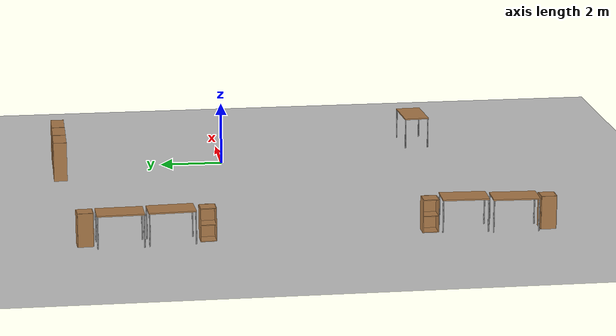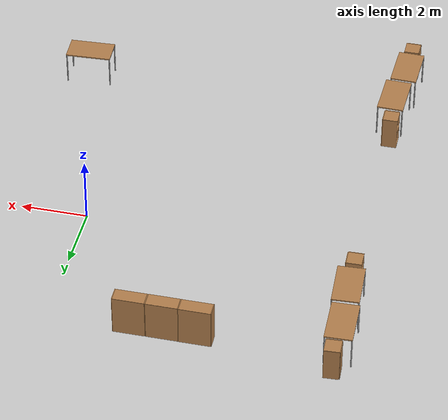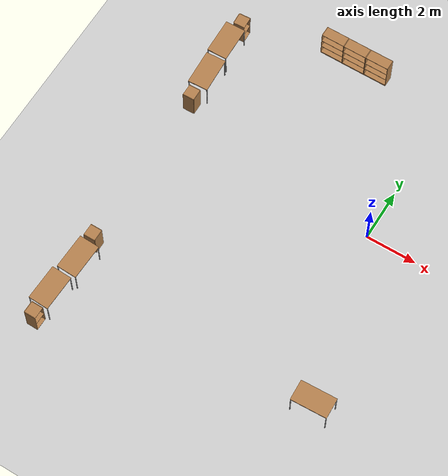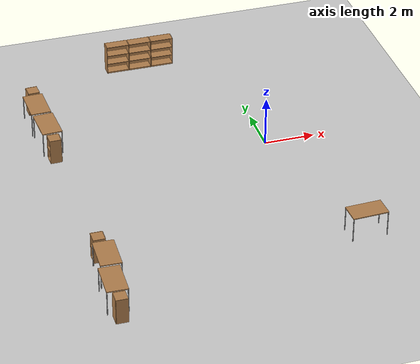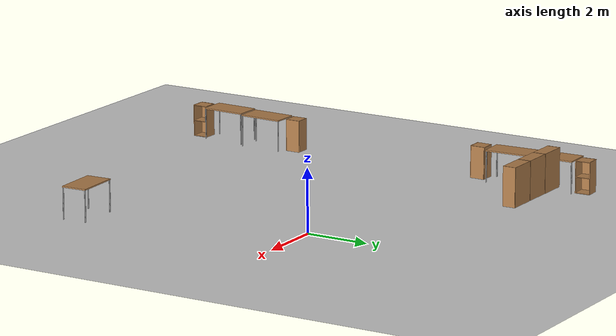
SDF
<sdf version="1.6">
 <world name="default">
  <model name="ground_plane">
   <static>1</static>
   <link name="link">
    <collision name="collision">
     <geometry><plane><normal>0 0 1</normal><size>100 100</size></plane></geometry>
     <surface><friction><ode><mu>100</mu><mu2>50</mu2></ode></friction></surface>
    </collision>
    <visual name="visual">
     <cast_shadows>0</cast_shadows>
     <geometry><plane><normal>0 0 1</normal><size>100 100</size></plane></geometry>
     <material>
      <script><uri>file://media/materials/scripts/gazebo.material</uri><name>Gazebo/Grey</name></script>
     </material>
    </visual>
   </link>
  </model>
  <model name="bookshelf_0">
   <static>1</static>
   <link name="bookshelf_0::bookshelf_0::link">
    <inertial><mass>1</mass></inertial>
    <collision name="back">
     <pose>0 0.005 0.6 0 -0 0</pose>
     <geometry><box><size>0.9 0.01 1.2</size></box></geometry>
    </collision>
    <visual name="visual1">
     <pose>0 0.005 0.6 0 -0 0</pose>
     <geometry><box><size>0.9 0.01 1.2</size></box></geometry>
     <material>
      <script><uri>file://media/materials/scripts/gazebo.material</uri><name>Gazebo/Wood</name></script>
     </material>
    </visual>
    <collision name="left_side">
     <pose>0.45 -0.195 0.6 0 -0 0</pose>
     <geometry><box><size>0.02 0.4 1.2</size></box></geometry>
    </collision>
    <visual name="visual2">
     <pose>0.45 -0.195 0.6 0 -0 0</pose>
     <geometry><box><size>0.02 0.4 1.2</size></box></geometry>
     <material>
      <script><uri>file://media/materials/scripts/gazebo.material</uri><name>Gazebo/Wood</name></script>
     </material>
    </visual>
    <collision name="right_side">
     <pose>-0.45 -0.195 0.6 0 -0 0</pose>
     <geometry><box><size>0.02 0.4 1.2</size></box></geometry>
    </collision>
    <visual name="visual3">
     <pose>-0.45 -0.195 0.6 0 -0 0</pose>
     <geometry><box><size>0.02 0.4 1.2</size></box></geometry>
     <material>
      <script><uri>file://media/materials/scripts/gazebo.material</uri><name>Gazebo/Wood</name></script>
     </material>
    </visual>
    <collision name="bottom">
     <pose>0 -0.195 0.03 0 -0 0</pose>
     <geometry><box><size>0.88 0.4 0.06</size></box></geometry>
    </collision>
    <visual name="visual4">
     <pose>0 -0.195 0.03 0 -0 0</pose>
     <geometry><box><size>0.88 0.4 0.06</size></box></geometry>
     <material>
      <script><uri>file://media/materials/scripts/gazebo.material</uri><name>Gazebo/Wood</name></script>
     </material>
    </visual>
    <collision name="top">
     <pose>0 -0.195 1.19 0 -0 0</pose>
     <geometry><box><size>0.88 0.4 0.02</size></box></geometry>
    </collision>
    <visual name="visual5">
     <pose>0 -0.195 1.19 0 -0 0</pose>
     <geometry><box><size>0.88 0.4 0.02</size></box></geometry>
     <material>
      <script><uri>file://media/materials/scripts/gazebo.material</uri><name>Gazebo/Wood</name></script>
     </material>
    </visual>
    <collision name="low_shelf">
     <pose>0 -0.195 0.43 0 -0 0</pose>
     <geometry><box><size>0.88 0.4 0.02</size></box></geometry>
    </collision>
    <visual name="visual6">
     <pose>0 -0.195 0.43 0 -0 0</pose>
     <geometry><box><size>0.88 0.4 0.02</size></box></geometry>
     <material>
      <script><uri>file://media/materials/scripts/gazebo.material</uri><name>Gazebo/Wood</name></script>
     </material>
    </visual>
    <collision name="high_shelf">
     <pose>0 -0.195 0.8 0 -0 0</pose>
     <geometry><box><size>0.88 0.4 0.02</size></box></geometry>
    </collision>
    <visual name="visual7">
     <pose>0 -0.195 0.8 0 -0 0</pose>
     <geometry><box><size>0.88 0.4 0.02</size></box></geometry>
     <material>
      <script><uri>file://media/materials/scripts/gazebo.material</uri><name>Gazebo/Wood</name></script>
     </material>
    </visual>
   </link>
   <pose>-4.58848 5.58592 1.04077 0 -0 0</pose>
  </model>
  <model name="bookshelf_0_clone">
   <static>1</static>
   <link name="bookshelf_0::bookshelf_0::link">
    <inertial><mass>1</mass></inertial>
    <collision name="back">
     <pose>0 0.005 0.6 0 -0 0</pose>
     <geometry><box><size>0.9 0.01 1.2</size></box></geometry>
    </collision>
    <visual name="visual1">
     <pose>0 0.005 0.6 0 -0 0</pose>
     <geometry><box><size>0.9 0.01 1.2</size></box></geometry>
     <material>
      <script><uri>file://media/materials/scripts/gazebo.material</uri><name>Gazebo/Wood</name></script>
     </material>
    </visual>
    <collision name="left_side">
     <pose>0.45 -0.195 0.6 0 -0 0</pose>
     <geometry><box><size>0.02 0.4 1.2</size></box></geometry>
    </collision>
    <visual name="visual2">
     <pose>0.45 -0.195 0.6 0 -0 0</pose>
     <geometry><box><size>0.02 0.4 1.2</size></box></geometry>
     <material>
      <script><uri>file://media/materials/scripts/gazebo.material</uri><name>Gazebo/Wood</name></script>
     </material>
    </visual>
    <collision name="right_side">
     <pose>-0.45 -0.195 0.6 0 -0 0</pose>
     <geometry><box><size>0.02 0.4 1.2</size></box></geometry>
    </collision>
    <visual name="visual3">
     <pose>-0.45 -0.195 0.6 0 -0 0</pose>
     <geometry><box><size>0.02 0.4 1.2</size></box></geometry>
     <material>
      <script><uri>file://media/materials/scripts/gazebo.material</uri><name>Gazebo/Wood</name></script>
     </material>
    </visual>
    <collision name="bottom">
     <pose>0 -0.195 0.03 0 -0 0</pose>
     <geometry><box><size>0.88 0.4 0.06</size></box></geometry>
    </collision>
    <visual name="visual4">
     <pose>0 -0.195 0.03 0 -0 0</pose>
     <geometry><box><size>0.88 0.4 0.06</size></box></geometry>
     <material>
      <script><uri>file://media/materials/scripts/gazebo.material</uri><name>Gazebo/Wood</name></script>
     </material>
    </visual>
    <collision name="top">
     <pose>0 -0.195 1.19 0 -0 0</pose>
     <geometry><box><size>0.88 0.4 0.02</size></box></geometry>
    </collision>
    <visual name="visual5">
     <pose>0 -0.195 1.19 0 -0 0</pose>
     <geometry><box><size>0.88 0.4 0.02</size></box></geometry>
     <material>
      <script><uri>file://media/materials/scripts/gazebo.material</uri><name>Gazebo/Wood</name></script>
     </material>
    </visual>
    <collision name="low_shelf">
     <pose>0 -0.195 0.43 0 -0 0</pose>
     <geometry><box><size>0.88 0.4 0.02</size></box></geometry>
    </collision>
    <visual name="visual6">
     <pose>0 -0.195 0.43 0 -0 0</pose>
     <geometry><box><size>0.88 0.4 0.02</size></box></geometry>
     <material>
      <script><uri>file://media/materials/scripts/gazebo.material</uri><name>Gazebo/Wood</name></script>
     </material>
    </visual>
    <collision name="high_shelf">
     <pose>0 -0.195 0.8 0 -0 0</pose>
     <geometry><box><size>0.88 0.4 0.02</size></box></geometry>
    </collision>
    <visual name="visual7">
     <pose>0 -0.195 0.8 0 -0 0</pose>
     <geometry><box><size>0.88 0.4 0.02</size></box></geometry>
     <material>
      <script><uri>file://media/materials/scripts/gazebo.material</uri><name>Gazebo/Wood</name></script>
     </material>
    </visual>
   </link>
   <pose>-3.67407 5.58213 1.04077 0 -0 0</pose>
  </model>
  <model name="bookshelf_0_clone_clone">
   <static>1</static>
   <link name="bookshelf_0::bookshelf_0::link">
    <inertial><mass>1</mass></inertial>
    <collision name="back">
     <pose>0 0.005 0.6 0 -0 0</pose>
     <geometry><box><size>0.9 0.01 1.2</size></box></geometry>
    </collision>
    <visual name="visual1">
     <pose>0 0.005 0.6 0 -0 0</pose>
     <geometry><box><size>0.9 0.01 1.2</size></box></geometry>
     <material>
      <script><uri>file://media/materials/scripts/gazebo.material</uri><name>Gazebo/Wood</name></script>
     </material>
    </visual>
    <collision name="left_side">
     <pose>0.45 -0.195 0.6 0 -0 0</pose>
     <geometry><box><size>0.02 0.4 1.2</size></box></geometry>
    </collision>
    <visual name="visual2">
     <pose>0.45 -0.195 0.6 0 -0 0</pose>
     <geometry><box><size>0.02 0.4 1.2</size></box></geometry>
     <material>
      <script><uri>file://media/materials/scripts/gazebo.material</uri><name>Gazebo/Wood</name></script>
     </material>
    </visual>
    <collision name="right_side">
     <pose>-0.45 -0.195 0.6 0 -0 0</pose>
     <geometry><box><size>0.02 0.4 1.2</size></box></geometry>
    </collision>
    <visual name="visual3">
     <pose>-0.45 -0.195 0.6 0 -0 0</pose>
     <geometry><box><size>0.02 0.4 1.2</size></box></geometry>
     <material>
      <script><uri>file://media/materials/scripts/gazebo.material</uri><name>Gazebo/Wood</name></script>
     </material>
    </visual>
    <collision name="bottom">
     <pose>0 -0.195 0.03 0 -0 0</pose>
     <geometry><box><size>0.88 0.4 0.06</size></box></geometry>
    </collision>
    <visual name="visual4">
     <pose>0 -0.195 0.03 0 -0 0</pose>
     <geometry><box><size>0.88 0.4 0.06</size></box></geometry>
     <material>
      <script><uri>file://media/materials/scripts/gazebo.material</uri><name>Gazebo/Wood</name></script>
     </material>
    </visual>
    <collision name="top">
     <pose>0 -0.195 1.19 0 -0 0</pose>
     <geometry><box><size>0.88 0.4 0.02</size></box></geometry>
    </collision>
    <visual name="visual5">
     <pose>0 -0.195 1.19 0 -0 0</pose>
     <geometry><box><size>0.88 0.4 0.02</size></box></geometry>
     <material>
      <script><uri>file://media/materials/scripts/gazebo.material</uri><name>Gazebo/Wood</name></script>
     </material>
    </visual>
    <collision name="low_shelf">
     <pose>0 -0.195 0.43 0 -0 0</pose>
     <geometry><box><size>0.88 0.4 0.02</size></box></geometry>
    </collision>
    <visual name="visual6">
     <pose>0 -0.195 0.43 0 -0 0</pose>
     <geometry><box><size>0.88 0.4 0.02</size></box></geometry>
     <material>
      <script><uri>file://media/materials/scripts/gazebo.material</uri><name>Gazebo/Wood</name></script>
     </material>
    </visual>
    <collision name="high_shelf">
     <pose>0 -0.195 0.8 0 -0 0</pose>
     <geometry><box><size>0.88 0.4 0.02</size></box></geometry>
    </collision>
    <visual name="visual7">
     <pose>0 -0.195 0.8 0 -0 0</pose>
     <geometry><box><size>0.88 0.4 0.02</size></box></geometry>
     <material>
      <script><uri>file://media/materials/scripts/gazebo.material</uri><name>Gazebo/Wood</name></script>
     </material>
    </visual>
   </link>
   <pose>-2.75403 5.58407 1.04077 0 -0 0</pose>
  </model>
  <model name="cabinet_clone_clone_0_clone">
   <static>1</static>
   <link name="cabinet_bottom_plate">
    <inertial>
     <pose>0 0 -1 0 -0 0</pose>
     <inertia><ixx>2.05</ixx><ixy>0</ixy><ixz>0</ixz><iyy>2.05</iyy><iyz>0</iyz><izz>2.05</izz></inertia>
     <mass>25</mass>
    </inertial>
    <collision name="cabinet_bottom_plate_geom">
     <pose>0 0 0.01 0 -0 0</pose>
     <geometry><box><size>0.45 0.45 0.02</size></box></geometry>
    </collision>
    <visual name="cabinet_bottom_plate_geom_visual">
     <pose>0 0 0.01 0 -0 0</pose>
     <geometry><box><size>0.45 0.45 0.02</size></box></geometry>
     <material>
      <script><uri>file://media/materials/scripts/gazebo.material</uri><name>Gazebo/Wood</name></script>
     </material>
    </visual>
    <collision name="cabinet_bottom_plate_geom_cabinet_back_plate">
     <pose>0.235 0 0.51 0 -0 0</pose>
     <geometry><box><size>0.02 0.45 1.02</size></box></geometry>
    </collision>
    <visual name="cabinet_bottom_plate_geom_cabinet_back_plate_visual">
     <pose>0.235 0 0.51 0 -0 0</pose>
     <geometry><box><size>0.02 0.45 1.02</size></box></geometry>
     <material>
      <script><uri>file://media/materials/scripts/gazebo.material</uri><name>Gazebo/Wood</name></script>
     </material>
    </visual>
    <collision name="cabinet_bottom_plate_geom_cabinet_left_plate">
     <pose>0 0.235 0.51 0 -0 0</pose>
     <geometry><box><size>0.45 0.02 1.02</size></box></geometry>
    </collision>
    <visual name="cabinet_bottom_plate_geom_cabinet_left_plate_visual">
     <pose>0 0.235 0.51 0 -0 0</pose>
     <geometry><box><size>0.45 0.02 1.02</size></box></geometry>
     <material>
      <script><uri>file://media/materials/scripts/gazebo.material</uri><name>Gazebo/Wood</name></script>
     </material>
    </visual>
    <collision name="cabinet_bottom_plate_geom_cabinet_middle_plate">
     <pose>0 0 0.51 0 -0 0</pose>
     <geometry><box><size>0.45 0.45 0.02</size></box></geometry>
    </collision>
    <visual name="cabinet_bottom_plate_geom_cabinet_middle_plate_visual">
     <pose>0 0 0.51 0 -0 0</pose>
     <geometry><box><size>0.45 0.45 0.02</size></box></geometry>
     <material>
      <script><uri>file://media/materials/scripts/gazebo.material</uri><name>Gazebo/Wood</name></script>
     </material>
    </visual>
    <collision name="cabinet_bottom_plate_geom_cabinet_right_plate">
     <pose>0 -0.235 0.51 0 -0 0</pose>
     <geometry><box><size>0.45 0.02 1.02</size></box></geometry>
    </collision>
    <visual name="cabinet_bottom_plate_geom_cabinet_right_plate_visual">
     <pose>0 -0.235 0.51 0 -0 0</pose>
     <geometry><box><size>0.45 0.02 1.02</size></box></geometry>
     <material>
      <script><uri>file://media/materials/scripts/gazebo.material</uri><name>Gazebo/Wood</name></script>
     </material>
    </visual>
    <collision name="cabinet_bottom_plate_geom_cabinet_top_plate">
     <pose>0 0 1.01 0 -0 0</pose>
     <geometry><box><size>0.45 0.45 0.02</size></box></geometry>
    </collision>
    <visual name="cabinet_bottom_plate_geom_cabinet_top_plate_visual">
     <pose>0 0 1.01 0 -0 0</pose>
     <geometry><box><size>0.45 0.45 0.02</size></box></geometry>
     <material>
      <script><uri>file://media/materials/scripts/gazebo.material</uri><name>Gazebo/Wood</name></script>
     </material>
    </visual>
   </link>
   <pose>-8.2361 4.81951 0.017437 0 0 -3.09441</pose>
  </model>
  <model name="table_clone_clone_0_clone">
   <static>0</static>
   <link name="link">
    <collision name="surface">
     <pose>0 0 1 0 -0 0</pose>
     <geometry><box><size>1.5 0.8 0.03</size></box></geometry>
     <surface><friction><ode><mu>0.6</mu><mu2>0.6</mu2></ode></friction></surface>
    </collision>
    <visual name="visual1">
     <pose>0 0 1 0 -0 0</pose>
     <geometry><box><size>1.4 0.8 0.04</size></box></geometry>
     <material>
      <script><uri>file://media/materials/scripts/gazebo.material</uri><name>Gazebo/Wood</name></script>
     </material>
    </visual>
    <collision name="front_left_leg">
     <pose>0.68 0.38 0.5 0 -0 0</pose>
     <geometry><cylinder><radius>0.02</radius><length>1</length></cylinder></geometry>
    </collision>
    <visual name="front_left_leg">
     <pose>0.68 0.38 0.5 0 -0 0</pose>
     <geometry><cylinder><radius>0.02</radius><length>1</length></cylinder></geometry>
     <material>
      <script><uri>file://media/materials/scripts/gazebo.material</uri><name>Gazebo/Grey</name></script>
     </material>
    </visual>
    <collision name="front_right_leg">
     <pose>0.68 -0.38 0.5 0 -0 0</pose>
     <geometry><cylinder><radius>0.02</radius><length>1</length></cylinder></geometry>
    </collision>
    <visual name="front_right_leg">
     <pose>0.68 -0.38 0.5 0 -0 0</pose>
     <geometry><cylinder><radius>0.02</radius><length>1</length></cylinder></geometry>
     <material>
      <script><uri>file://media/materials/scripts/gazebo.material</uri><name>Gazebo/Grey</name></script>
     </material>
    </visual>
    <collision name="back_right_leg">
     <pose>-0.68 -0.38 0.5 0 -0 0</pose>
     <geometry><cylinder><radius>0.02</radius><length>1</length></cylinder></geometry>
    </collision>
    <visual name="back_right_leg">
     <pose>-0.68 -0.38 0.5 0 -0 0</pose>
     <geometry><cylinder><radius>0.02</radius><length>1</length></cylinder></geometry>
     <material>
      <script><uri>file://media/materials/scripts/gazebo.material</uri><name>Gazebo/Grey</name></script>
     </material>
    </visual>
    <collision name="back_left_leg">
     <pose>-0.68 0.38 0.5 0 -0 0</pose>
     <geometry><cylinder><radius>0.02</radius><length>1</length></cylinder></geometry>
    </collision>
    <visual name="back_left_leg">
     <pose>-0.68 0.38 0.5 0 -0 0</pose>
     <geometry><cylinder><radius>0.02</radius><length>1</length></cylinder></geometry>
     <material>
      <script><uri>file://media/materials/scripts/gazebo.material</uri><name>Gazebo/Grey</name></script>
     </material>
    </visual>
    <inertial>
     <inertia><ixx>1</ixx><ixy>0</ixy><ixz>0</ixz><iyy>1</iyy><iyz>0</iyz><izz>1</izz></inertia>
     <mass>1</mass>
    </inertial>
   </link>
   <pose>-8.29871 3.79829 -3e-06 -3e-06 2e-06 1.59882</pose>
  </model>
  <model name="table_clone_clone_clone_clone">
   <static>0</static>
   <link name="link">
    <collision name="surface">
     <pose>0 0 1 0 -0 0</pose>
     <geometry><box><size>1.5 0.8 0.03</size></box></geometry>
     <surface><friction><ode><mu>0.6</mu><mu2>0.6</mu2></ode></friction></surface>
    </collision>
    <visual name="visual1">
     <pose>0 0 1 0 -0 0</pose>
     <geometry><box><size>1.4 0.8 0.04</size></box></geometry>
     <material>
      <script><uri>file://media/materials/scripts/gazebo.material</uri><name>Gazebo/Wood</name></script>
     </material>
    </visual>
    <collision name="front_left_leg">
     <pose>0.68 0.38 0.5 0 -0 0</pose>
     <geometry><cylinder><radius>0.02</radius><length>1</length></cylinder></geometry>
    </collision>
    <visual name="front_left_leg">
     <pose>0.68 0.38 0.5 0 -0 0</pose>
     <geometry><cylinder><radius>0.02</radius><length>1</length></cylinder></geometry>
     <material>
      <script><uri>file://media/materials/scripts/gazebo.material</uri><name>Gazebo/Grey</name></script>
     </material>
    </visual>
    <collision name="front_right_leg">
     <pose>0.68 -0.38 0.5 0 -0 0</pose>
     <geometry><cylinder><radius>0.02</radius><length>1</length></cylinder></geometry>
    </collision>
    <visual name="front_right_leg">
     <pose>0.68 -0.38 0.5 0 -0 0</pose>
     <geometry><cylinder><radius>0.02</radius><length>1</length></cylinder></geometry>
     <material>
      <script><uri>file://media/materials/scripts/gazebo.material</uri><name>Gazebo/Grey</name></script>
     </material>
    </visual>
    <collision name="back_right_leg">
     <pose>-0.68 -0.38 0.5 0 -0 0</pose>
     <geometry><cylinder><radius>0.02</radius><length>1</length></cylinder></geometry>
    </collision>
    <visual name="back_right_leg">
     <pose>-0.68 -0.38 0.5 0 -0 0</pose>
     <geometry><cylinder><radius>0.02</radius><length>1</length></cylinder></geometry>
     <material>
      <script><uri>file://media/materials/scripts/gazebo.material</uri><name>Gazebo/Grey</name></script>
     </material>
    </visual>
    <collision name="back_left_leg">
     <pose>-0.68 0.38 0.5 0 -0 0</pose>
     <geometry><cylinder><radius>0.02</radius><length>1</length></cylinder></geometry>
    </collision>
    <visual name="back_left_leg">
     <pose>-0.68 0.38 0.5 0 -0 0</pose>
     <geometry><cylinder><radius>0.02</radius><length>1</length></cylinder></geometry>
     <material>
      <script><uri>file://media/materials/scripts/gazebo.material</uri><name>Gazebo/Grey</name></script>
     </material>
    </visual>
    <inertial>
     <inertia><ixx>1</ixx><ixy>0</ixy><ixz>0</ixz><iyy>1</iyy><iyz>0</iyz><izz>1</izz></inertia>
     <mass>1</mass>
    </inertial>
   </link>
   <pose>-8.20317 2.29226 -1e-06 -1e-06 -0 1.62146</pose>
  </model>
  <model name="cabinet_clone_clone_clone_clone">
   <static>1</static>
   <link name="cabinet_bottom_plate">
    <inertial>
     <pose>0 0 -1 0 -0 0</pose>
     <inertia><ixx>2.05</ixx><ixy>0</ixy><ixz>0</ixz><iyy>2.05</iyy><iyz>0</iyz><izz>2.05</izz></inertia>
     <mass>25</mass>
    </inertial>
    <collision name="cabinet_bottom_plate_geom">
     <pose>0 0 0.01 0 -0 0</pose>
     <geometry><box><size>0.45 0.45 0.02</size></box></geometry>
    </collision>
    <visual name="cabinet_bottom_plate_geom_visual">
     <pose>0 0 0.01 0 -0 0</pose>
     <geometry><box><size>0.45 0.45 0.02</size></box></geometry>
     <material>
      <script><uri>file://media/materials/scripts/gazebo.material</uri><name>Gazebo/Wood</name></script>
     </material>
    </visual>
    <collision name="cabinet_bottom_plate_geom_cabinet_back_plate">
     <pose>0.235 0 0.51 0 -0 0</pose>
     <geometry><box><size>0.02 0.45 1.02</size></box></geometry>
    </collision>
    <visual name="cabinet_bottom_plate_geom_cabinet_back_plate_visual">
     <pose>0.235 0 0.51 0 -0 0</pose>
     <geometry><box><size>0.02 0.45 1.02</size></box></geometry>
     <material>
      <script><uri>file://media/materials/scripts/gazebo.material</uri><name>Gazebo/Wood</name></script>
     </material>
    </visual>
    <collision name="cabinet_bottom_plate_geom_cabinet_left_plate">
     <pose>0 0.235 0.51 0 -0 0</pose>
     <geometry><box><size>0.45 0.02 1.02</size></box></geometry>
    </collision>
    <visual name="cabinet_bottom_plate_geom_cabinet_left_plate_visual">
     <pose>0 0.235 0.51 0 -0 0</pose>
     <geometry><box><size>0.45 0.02 1.02</size></box></geometry>
     <material>
      <script><uri>file://media/materials/scripts/gazebo.material</uri><name>Gazebo/Wood</name></script>
     </material>
    </visual>
    <collision name="cabinet_bottom_plate_geom_cabinet_middle_plate">
     <pose>0 0 0.51 0 -0 0</pose>
     <geometry><box><size>0.45 0.45 0.02</size></box></geometry>
    </collision>
    <visual name="cabinet_bottom_plate_geom_cabinet_middle_plate_visual">
     <pose>0 0 0.51 0 -0 0</pose>
     <geometry><box><size>0.45 0.45 0.02</size></box></geometry>
     <material>
      <script><uri>file://media/materials/scripts/gazebo.material</uri><name>Gazebo/Wood</name></script>
     </material>
    </visual>
    <collision name="cabinet_bottom_plate_geom_cabinet_right_plate">
     <pose>0 -0.235 0.51 0 -0 0</pose>
     <geometry><box><size>0.45 0.02 1.02</size></box></geometry>
    </collision>
    <visual name="cabinet_bottom_plate_geom_cabinet_right_plate_visual">
     <pose>0 -0.235 0.51 0 -0 0</pose>
     <geometry><box><size>0.45 0.02 1.02</size></box></geometry>
     <material>
      <script><uri>file://media/materials/scripts/gazebo.material</uri><name>Gazebo/Wood</name></script>
     </material>
    </visual>
    <collision name="cabinet_bottom_plate_geom_cabinet_top_plate">
     <pose>0 0 1.01 0 -0 0</pose>
     <geometry><box><size>0.45 0.45 0.02</size></box></geometry>
    </collision>
    <visual name="cabinet_bottom_plate_geom_cabinet_top_plate_visual">
     <pose>0 0 1.01 0 -0 0</pose>
     <geometry><box><size>0.45 0.45 0.02</size></box></geometry>
     <material>
      <script><uri>file://media/materials/scripts/gazebo.material</uri><name>Gazebo/Wood</name></script>
     </material>
    </visual>
   </link>
   <pose>-8.19764 1.21371 0.017437 -0.01053 -0.000628 0.017723</pose>
  </model>
  <model name="table_clone_0_clone_clone_0">
   <static>0</static>
   <link name="link">
    <collision name="surface">
     <pose>0 0 1 0 -0 0</pose>
     <geometry><box><size>1.5 0.8 0.03</size></box></geometry>
     <surface><friction><ode><mu>0.6</mu><mu2>0.6</mu2></ode></friction></surface>
    </collision>
    <visual name="visual1">
     <pose>0 0 1 0 -0 0</pose>
     <geometry><box><size>1.4 0.8 0.04</size></box></geometry>
     <material>
      <script><uri>file://media/materials/scripts/gazebo.material</uri><name>Gazebo/Wood</name></script>
     </material>
    </visual>
    <collision name="front_left_leg">
     <pose>0.68 0.38 0.5 0 -0 0</pose>
     <geometry><cylinder><radius>0.02</radius><length>1</length></cylinder></geometry>
    </collision>
    <visual name="front_left_leg">
     <pose>0.68 0.38 0.5 0 -0 0</pose>
     <geometry><cylinder><radius>0.02</radius><length>1</length></cylinder></geometry>
     <material>
      <script><uri>file://media/materials/scripts/gazebo.material</uri><name>Gazebo/Grey</name></script>
     </material>
    </visual>
    <collision name="front_right_leg">
     <pose>0.68 -0.38 0.5 0 -0 0</pose>
     <geometry><cylinder><radius>0.02</radius><length>1</length></cylinder></geometry>
    </collision>
    <visual name="front_right_leg">
     <pose>0.68 -0.38 0.5 0 -0 0</pose>
     <geometry><cylinder><radius>0.02</radius><length>1</length></cylinder></geometry>
     <material>
      <script><uri>file://media/materials/scripts/gazebo.material</uri><name>Gazebo/Grey</name></script>
     </material>
    </visual>
    <collision name="back_right_leg">
     <pose>-0.68 -0.38 0.5 0 -0 0</pose>
     <geometry><cylinder><radius>0.02</radius><length>1</length></cylinder></geometry>
    </collision>
    <visual name="back_right_leg">
     <pose>-0.68 -0.38 0.5 0 -0 0</pose>
     <geometry><cylinder><radius>0.02</radius><length>1</length></cylinder></geometry>
     <material>
      <script><uri>file://media/materials/scripts/gazebo.material</uri><name>Gazebo/Grey</name></script>
     </material>
    </visual>
    <collision name="back_left_leg">
     <pose>-0.68 0.38 0.5 0 -0 0</pose>
     <geometry><cylinder><radius>0.02</radius><length>1</length></cylinder></geometry>
    </collision>
    <visual name="back_left_leg">
     <pose>-0.68 0.38 0.5 0 -0 0</pose>
     <geometry><cylinder><radius>0.02</radius><length>1</length></cylinder></geometry>
     <material>
      <script><uri>file://media/materials/scripts/gazebo.material</uri><name>Gazebo/Grey</name></script>
     </material>
    </visual>
    <inertial>
     <inertia><ixx>1</ixx><ixy>0</ixy><ixz>0</ixz><iyy>1</iyy><iyz>0</iyz><izz>1</izz></inertia>
     <mass>1</mass>
    </inertial>
   </link>
   <pose>-8.05156 -6.45782 -1e-06 0 -2e-06 -1.60539</pose>
  </model>
  <model name="table_clone_0_clone_clone_1">
   <static>0</static>
   <link name="link">
    <collision name="surface">
     <pose>0 0 1 0 -0 0</pose>
     <geometry><box><size>1.5 0.8 0.03</size></box></geometry>
     <surface><friction><ode><mu>0.6</mu><mu2>0.6</mu2></ode></friction></surface>
    </collision>
    <visual name="visual1">
     <pose>0 0 1 0 -0 0</pose>
     <geometry><box><size>1.4 0.8 0.04</size></box></geometry>
     <material>
      <script><uri>file://media/materials/scripts/gazebo.material</uri><name>Gazebo/Wood</name></script>
     </material>
    </visual>
    <collision name="front_left_leg">
     <pose>0.68 0.38 0.5 0 -0 0</pose>
     <geometry><cylinder><radius>0.02</radius><length>1</length></cylinder></geometry>
    </collision>
    <visual name="front_left_leg">
     <pose>0.68 0.38 0.5 0 -0 0</pose>
     <geometry><cylinder><radius>0.02</radius><length>1</length></cylinder></geometry>
     <material>
      <script><uri>file://media/materials/scripts/gazebo.material</uri><name>Gazebo/Grey</name></script>
     </material>
    </visual>
    <collision name="front_right_leg">
     <pose>0.68 -0.38 0.5 0 -0 0</pose>
     <geometry><cylinder><radius>0.02</radius><length>1</length></cylinder></geometry>
    </collision>
    <visual name="front_right_leg">
     <pose>0.68 -0.38 0.5 0 -0 0</pose>
     <geometry><cylinder><radius>0.02</radius><length>1</length></cylinder></geometry>
     <material>
      <script><uri>file://media/materials/scripts/gazebo.material</uri><name>Gazebo/Grey</name></script>
     </material>
    </visual>
    <collision name="back_right_leg">
     <pose>-0.68 -0.38 0.5 0 -0 0</pose>
     <geometry><cylinder><radius>0.02</radius><length>1</length></cylinder></geometry>
    </collision>
    <visual name="back_right_leg">
     <pose>-0.68 -0.38 0.5 0 -0 0</pose>
     <geometry><cylinder><radius>0.02</radius><length>1</length></cylinder></geometry>
     <material>
      <script><uri>file://media/materials/scripts/gazebo.material</uri><name>Gazebo/Grey</name></script>
     </material>
    </visual>
    <collision name="back_left_leg">
     <pose>-0.68 0.38 0.5 0 -0 0</pose>
     <geometry><cylinder><radius>0.02</radius><length>1</length></cylinder></geometry>
    </collision>
    <visual name="back_left_leg">
     <pose>-0.68 0.38 0.5 0 -0 0</pose>
     <geometry><cylinder><radius>0.02</radius><length>1</length></cylinder></geometry>
     <material>
      <script><uri>file://media/materials/scripts/gazebo.material</uri><name>Gazebo/Grey</name></script>
     </material>
    </visual>
    <inertial>
     <inertia><ixx>1</ixx><ixy>0</ixy><ixz>0</ixz><iyy>1</iyy><iyz>0</iyz><izz>1</izz></inertia>
     <mass>1</mass>
    </inertial>
   </link>
   <pose>-8.21552 -7.95305 -9e-06 1e-06 -0 -1.60537</pose>
  </model>
  <model name="cabinet_clone_1_clone">
   <static>1</static>
   <link name="cabinet_bottom_plate">
    <inertial>
     <pose>0 0 -1 0 -0 0</pose>
     <inertia><ixx>2.05</ixx><ixy>0</ixy><ixz>0</ixz><iyy>2.05</iyy><iyz>0</iyz><izz>2.05</izz></inertia>
     <mass>25</mass>
    </inertial>
    <collision name="cabinet_bottom_plate_geom">
     <pose>0 0 0.01 0 -0 0</pose>
     <geometry><box><size>0.45 0.45 0.02</size></box></geometry>
    </collision>
    <visual name="cabinet_bottom_plate_geom_visual">
     <pose>0 0 0.01 0 -0 0</pose>
     <geometry><box><size>0.45 0.45 0.02</size></box></geometry>
     <material>
      <script><uri>file://media/materials/scripts/gazebo.material</uri><name>Gazebo/Wood</name></script>
     </material>
    </visual>
    <collision name="cabinet_bottom_plate_geom_cabinet_back_plate">
     <pose>0.235 0 0.51 0 -0 0</pose>
     <geometry><box><size>0.02 0.45 1.02</size></box></geometry>
    </collision>
    <visual name="cabinet_bottom_plate_geom_cabinet_back_plate_visual">
     <pose>0.235 0 0.51 0 -0 0</pose>
     <geometry><box><size>0.02 0.45 1.02</size></box></geometry>
     <material>
      <script><uri>file://media/materials/scripts/gazebo.material</uri><name>Gazebo/Wood</name></script>
     </material>
    </visual>
    <collision name="cabinet_bottom_plate_geom_cabinet_left_plate">
     <pose>0 0.235 0.51 0 -0 0</pose>
     <geometry><box><size>0.45 0.02 1.02</size></box></geometry>
    </collision>
    <visual name="cabinet_bottom_plate_geom_cabinet_left_plate_visual">
     <pose>0 0.235 0.51 0 -0 0</pose>
     <geometry><box><size>0.45 0.02 1.02</size></box></geometry>
     <material>
      <script><uri>file://media/materials/scripts/gazebo.material</uri><name>Gazebo/Wood</name></script>
     </material>
    </visual>
    <collision name="cabinet_bottom_plate_geom_cabinet_middle_plate">
     <pose>0 0 0.51 0 -0 0</pose>
     <geometry><box><size>0.45 0.45 0.02</size></box></geometry>
    </collision>
    <visual name="cabinet_bottom_plate_geom_cabinet_middle_plate_visual">
     <pose>0 0 0.51 0 -0 0</pose>
     <geometry><box><size>0.45 0.45 0.02</size></box></geometry>
     <material>
      <script><uri>file://media/materials/scripts/gazebo.material</uri><name>Gazebo/Wood</name></script>
     </material>
    </visual>
    <collision name="cabinet_bottom_plate_geom_cabinet_right_plate">
     <pose>0 -0.235 0.51 0 -0 0</pose>
     <geometry><box><size>0.45 0.02 1.02</size></box></geometry>
    </collision>
    <visual name="cabinet_bottom_plate_geom_cabinet_right_plate_visual">
     <pose>0 -0.235 0.51 0 -0 0</pose>
     <geometry><box><size>0.45 0.02 1.02</size></box></geometry>
     <material>
      <script><uri>file://media/materials/scripts/gazebo.material</uri><name>Gazebo/Wood</name></script>
     </material>
    </visual>
    <collision name="cabinet_bottom_plate_geom_cabinet_top_plate">
     <pose>0 0 1.01 0 -0 0</pose>
     <geometry><box><size>0.45 0.45 0.02</size></box></geometry>
    </collision>
    <visual name="cabinet_bottom_plate_geom_cabinet_top_plate_visual">
     <pose>0 0 1.01 0 -0 0</pose>
     <geometry><box><size>0.45 0.45 0.02</size></box></geometry>
     <material>
      <script><uri>file://media/materials/scripts/gazebo.material</uri><name>Gazebo/Wood</name></script>
     </material>
    </visual>
   </link>
   <pose>-8.13203 -5.40721 0 0 -0 0.000948</pose>
  </model>
  <model name="cabinet_clone_0_clone_0">
   <static>1</static>
   <link name="cabinet_bottom_plate">
    <inertial>
     <pose>0 0 -1 0 -0 0</pose>
     <inertia><ixx>2.05</ixx><ixy>0</ixy><ixz>0</ixz><iyy>2.05</iyy><iyz>0</iyz><izz>2.05</izz></inertia>
     <mass>25</mass>
    </inertial>
    <collision name="cabinet_bottom_plate_geom">
     <pose>0 0 0.01 0 -0 0</pose>
     <geometry><box><size>0.45 0.45 0.02</size></box></geometry>
    </collision>
    <visual name="cabinet_bottom_plate_geom_visual">
     <pose>0 0 0.01 0 -0 0</pose>
     <geometry><box><size>0.45 0.45 0.02</size></box></geometry>
     <material>
      <script><uri>file://media/materials/scripts/gazebo.material</uri><name>Gazebo/Wood</name></script>
     </material>
    </visual>
    <collision name="cabinet_bottom_plate_geom_cabinet_back_plate">
     <pose>0.235 0 0.51 0 -0 0</pose>
     <geometry><box><size>0.02 0.45 1.02</size></box></geometry>
    </collision>
    <visual name="cabinet_bottom_plate_geom_cabinet_back_plate_visual">
     <pose>0.235 0 0.51 0 -0 0</pose>
     <geometry><box><size>0.02 0.45 1.02</size></box></geometry>
     <material>
      <script><uri>file://media/materials/scripts/gazebo.material</uri><name>Gazebo/Wood</name></script>
     </material>
    </visual>
    <collision name="cabinet_bottom_plate_geom_cabinet_left_plate">
     <pose>0 0.235 0.51 0 -0 0</pose>
     <geometry><box><size>0.45 0.02 1.02</size></box></geometry>
    </collision>
    <visual name="cabinet_bottom_plate_geom_cabinet_left_plate_visual">
     <pose>0 0.235 0.51 0 -0 0</pose>
     <geometry><box><size>0.45 0.02 1.02</size></box></geometry>
     <material>
      <script><uri>file://media/materials/scripts/gazebo.material</uri><name>Gazebo/Wood</name></script>
     </material>
    </visual>
    <collision name="cabinet_bottom_plate_geom_cabinet_middle_plate">
     <pose>0 0 0.51 0 -0 0</pose>
     <geometry><box><size>0.45 0.45 0.02</size></box></geometry>
    </collision>
    <visual name="cabinet_bottom_plate_geom_cabinet_middle_plate_visual">
     <pose>0 0 0.51 0 -0 0</pose>
     <geometry><box><size>0.45 0.45 0.02</size></box></geometry>
     <material>
      <script><uri>file://media/materials/scripts/gazebo.material</uri><name>Gazebo/Wood</name></script>
     </material>
    </visual>
    <collision name="cabinet_bottom_plate_geom_cabinet_right_plate">
     <pose>0 -0.235 0.51 0 -0 0</pose>
     <geometry><box><size>0.45 0.02 1.02</size></box></geometry>
    </collision>
    <visual name="cabinet_bottom_plate_geom_cabinet_right_plate_visual">
     <pose>0 -0.235 0.51 0 -0 0</pose>
     <geometry><box><size>0.45 0.02 1.02</size></box></geometry>
     <material>
      <script><uri>file://media/materials/scripts/gazebo.material</uri><name>Gazebo/Wood</name></script>
     </material>
    </visual>
    <collision name="cabinet_bottom_plate_geom_cabinet_top_plate">
     <pose>0 0 1.01 0 -0 0</pose>
     <geometry><box><size>0.45 0.45 0.02</size></box></geometry>
    </collision>
    <visual name="cabinet_bottom_plate_geom_cabinet_top_plate_visual">
     <pose>0 0 1.01 0 -0 0</pose>
     <geometry><box><size>0.45 0.45 0.02</size></box></geometry>
     <material>
      <script><uri>file://media/materials/scripts/gazebo.material</uri><name>Gazebo/Wood</name></script>
     </material>
    </visual>
   </link>
   <pose>-8.2186 -8.95412 0 0 -0 3.13215</pose>
  </model>
  <model name="table_clone_0_clone_clone_0_clone">
   <static>0</static>
   <link name="link">
    <collision name="surface">
     <pose>0 0 1 0 -0 0</pose>
     <geometry><box><size>1.5 0.8 0.03</size></box></geometry>
     <surface><friction><ode><mu>0.6</mu><mu2>0.6</mu2></ode></friction></surface>
    </collision>
    <visual name="visual1">
     <pose>0 0 1 0 -0 0</pose>
     <geometry><box><size>1.4 0.8 0.04</size></box></geometry>
     <material>
      <script><uri>file://media/materials/scripts/gazebo.material</uri><name>Gazebo/Wood</name></script>
     </material>
    </visual>
    <collision name="front_left_leg">
     <pose>0.68 0.38 0.5 0 -0 0</pose>
     <geometry><cylinder><radius>0.02</radius><length>1</length></cylinder></geometry>
    </collision>
    <visual name="front_left_leg">
     <pose>0.68 0.38 0.5 0 -0 0</pose>
     <geometry><cylinder><radius>0.02</radius><length>1</length></cylinder></geometry>
     <material>
      <script><uri>file://media/materials/scripts/gazebo.material</uri><name>Gazebo/Grey</name></script>
     </material>
    </visual>
    <collision name="front_right_leg">
     <pose>0.68 -0.38 0.5 0 -0 0</pose>
     <geometry><cylinder><radius>0.02</radius><length>1</length></cylinder></geometry>
    </collision>
    <visual name="front_right_leg">
     <pose>0.68 -0.38 0.5 0 -0 0</pose>
     <geometry><cylinder><radius>0.02</radius><length>1</length></cylinder></geometry>
     <material>
      <script><uri>file://media/materials/scripts/gazebo.material</uri><name>Gazebo/Grey</name></script>
     </material>
    </visual>
    <collision name="back_right_leg">
     <pose>-0.68 -0.38 0.5 0 -0 0</pose>
     <geometry><cylinder><radius>0.02</radius><length>1</length></cylinder></geometry>
    </collision>
    <visual name="back_right_leg">
     <pose>-0.68 -0.38 0.5 0 -0 0</pose>
     <geometry><cylinder><radius>0.02</radius><length>1</length></cylinder></geometry>
     <material>
      <script><uri>file://media/materials/scripts/gazebo.material</uri><name>Gazebo/Grey</name></script>
     </material>
    </visual>
    <collision name="back_left_leg">
     <pose>-0.68 0.38 0.5 0 -0 0</pose>
     <geometry><cylinder><radius>0.02</radius><length>1</length></cylinder></geometry>
    </collision>
    <visual name="back_left_leg">
     <pose>-0.68 0.38 0.5 0 -0 0</pose>
     <geometry><cylinder><radius>0.02</radius><length>1</length></cylinder></geometry>
     <material>
      <script><uri>file://media/materials/scripts/gazebo.material</uri><name>Gazebo/Grey</name></script>
     </material>
    </visual>
    <inertial>
     <inertia><ixx>1</ixx><ixy>0</ixy><ixz>0</ixz><iyy>1</iyy><iyz>0</iyz><izz>1</izz></inertia>
     <mass>1</mass>
    </inertial>
   </link>
   <pose>1.67397 -6.65068 -3e-06 0 4e-06 -3.09741</pose>
  </model>
 </world>
</sdf>
